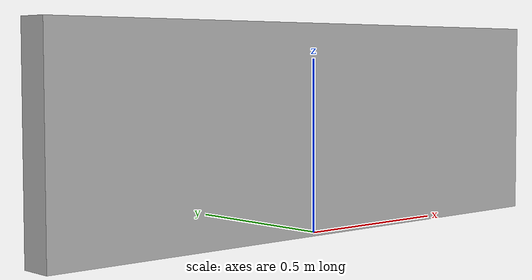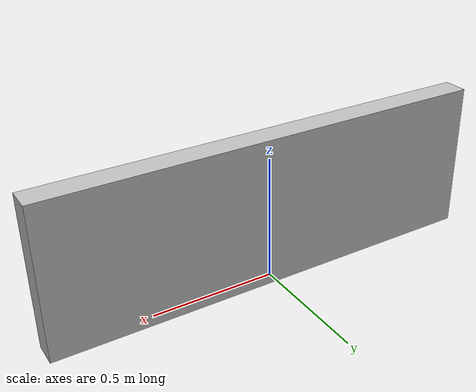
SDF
<?xml version="1.0"?>
<sdf version="1.6">
  <model name="rwc2017/wall_180">
    <link name="1_link">
      <collision name="1_col">
        <geometry>
          <box>
            <size>1.8 0.1 0.6</size>
          </box>
        </geometry>
      </collision>
      <visual name="1_vis">
        <geometry>
          <box>
            <size>1.8 0.1 0.6</size>
          </box>
        </geometry>
        <material>
          <ambient>0.75 0.75 0.75 1</ambient>
        </material>
      </visual>
      <pose>0 0 0.3 0 0 0</pose>
    </link>
    <static>true</static>
  </model>
</sdf>
